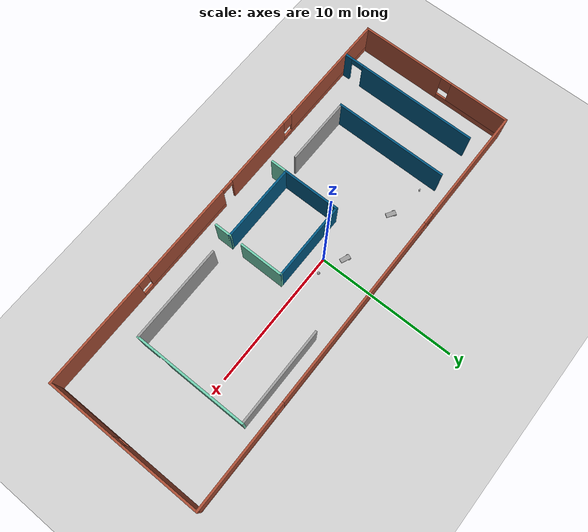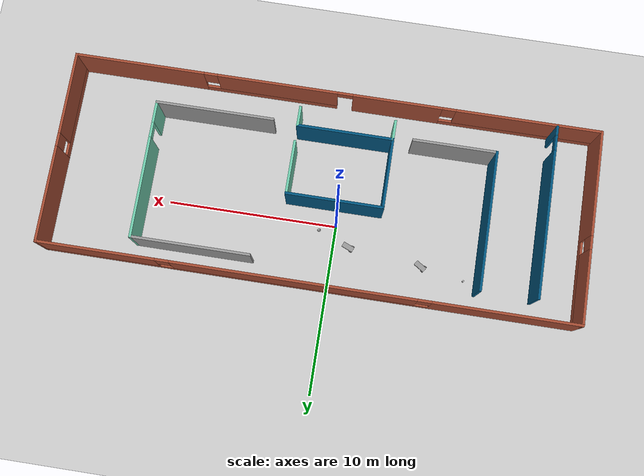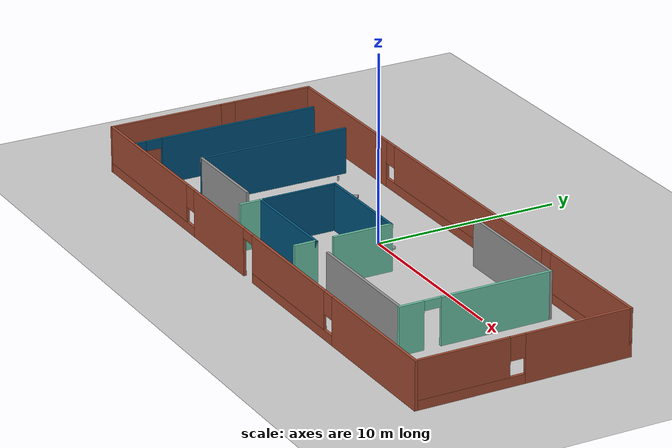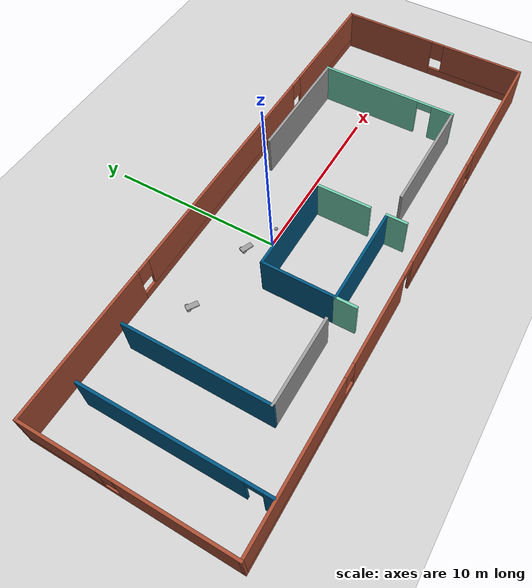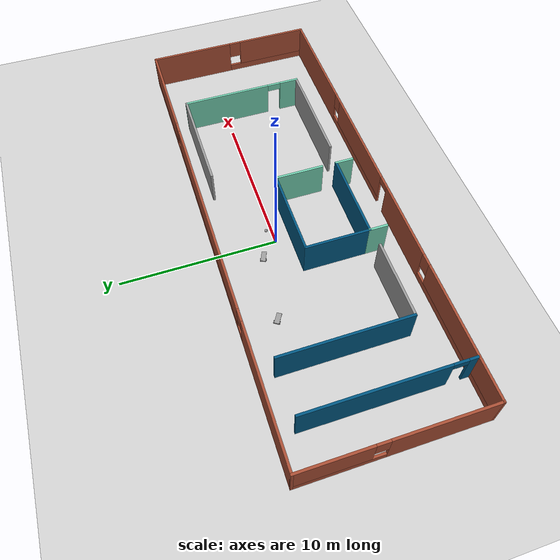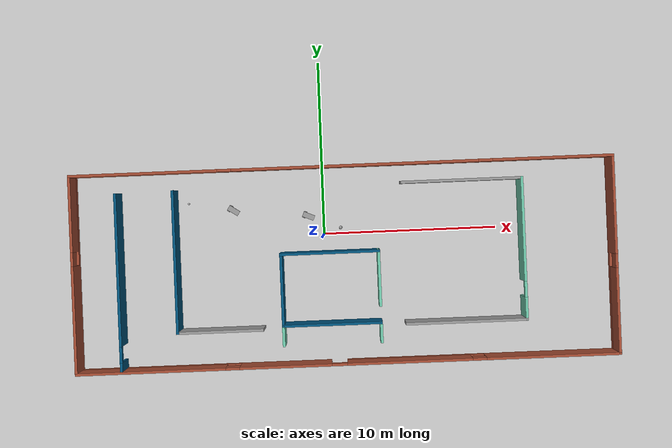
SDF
<sdf version="1.6">
 <world name="default">
  <light name="sun" type="directional">
   <pose>0 0 10 0 -0 0</pose>
   <diffuse>0.8 0.8 0.8 1</diffuse>
   <specular>0.2 0.2 0.2 1</specular>
   <attenuation>
    <range>1000</range>
    <constant>0.9</constant>
    <linear>0.01</linear>
    <quadratic>0.001</quadratic>
   </attenuation>
   <direction>-0.5 0.1 -0.9</direction>
  </light>
  <model name="ground_plane">
   <static>1</static>
   <link name="link">
    <collision name="collision">
     <geometry><plane><normal>0 0 1</normal><size>100 100</size></plane></geometry>
     <surface>
      <contact><collide_bitmask>65535</collide_bitmask></contact>
      <friction><ode><mu>100</mu><mu2>50</mu2></ode></friction>
     </surface>
    </collision>
    <visual name="visual">
     <cast_shadows>0</cast_shadows>
     <geometry><plane><normal>0 0 1</normal><size>100 100</size></plane></geometry>
     <material>
      <script><uri>file://media/materials/scripts/gazebo.material</uri><name>Gazebo/Grey</name></script>
     </material>
    </visual>
   </link>
  </model>
  <gravity>0 0 -9.8</gravity>
  <magnetic_field>6e-06 2.3e-05 -4.2e-05</magnetic_field>
  <atmosphere type="adiabatic"/>
  <physics name="default_physics" default="0" type="ode">
   <max_step_size>0.001</max_step_size>
   <real_time_factor>1</real_time_factor>
   <real_time_update_rate>1000</real_time_update_rate>
  </physics>
  <scene><ambient>0.4 0.4 0.4 1</ambient><background>0.7 0.7 0.7 1</background><shadows>1</shadows></scene>
  <spherical_coordinates>
   <surface_model>EARTH_WGS84</surface_model>
   <latitude_deg>0</latitude_deg>
   <longitude_deg>0</longitude_deg>
   <elevation>0</elevation>
   <heading_deg>0</heading_deg>
  </spherical_coordinates>
  <model name="building">
   <pose>1.10006 -1.77566 0 0 -0 0</pose>
   <link name="Wall_11">
    <pose>0 5.675 0 0 -0 0</pose>
    <visual name="Wall_11_Visual_0">
     <pose>-11.3538 0 1.25 0 -0 0</pose>
     <geometry><box><size>8.54246 0.15 2.5</size></box></geometry>
     <material>
      <script><uri>file://media/materials/scripts/gazebo.material</uri><name>Gazebo/Bricks</name></script>
      <ambient>1 1 1 1</ambient>
     </material>
     <meta><layer>0</layer></meta>
    </visual>
    <collision name="Wall_11_Collision_0">
     <geometry><box><size>8.54246 0.15 2.5</size></box></geometry>
     <pose>-11.3538 0 1.25 0 -0 0</pose>
    </collision>
    <visual name="Wall_11_Visual_1">
     <pose>4.27123 0 0.25 0 -0 0</pose>
     <geometry><box><size>22.7075 0.15 0.5</size></box></geometry>
     <material>
      <script><uri>file://media/materials/scripts/gazebo.material</uri><name>Gazebo/Bricks</name></script>
      <ambient>1 1 1 1</ambient>
     </material>
     <meta><layer>0</layer></meta>
    </visual>
    <collision name="Wall_11_Collision_1">
     <geometry><box><size>22.7075 0.15 0.5</size></box></geometry>
     <pose>4.27123 0 0.25 0 -0 0</pose>
    </collision>
    <visual name="Wall_11_Visual_2">
     <pose>0.803208 0 1.5 0 -0 0</pose>
     <geometry><box><size>14.1715 0.15 2</size></box></geometry>
     <material>
      <script><uri>file://media/materials/scripts/gazebo.material</uri><name>Gazebo/Bricks</name></script>
      <ambient>1 1 1 1</ambient>
     </material>
     <meta><layer>0</layer></meta>
    </visual>
    <collision name="Wall_11_Collision_2">
     <geometry><box><size>14.1715 0.15 2</size></box></geometry>
     <pose>0.803208 0 1.5 0 -0 0</pose>
    </collision>
    <visual name="Wall_11_Visual_3">
     <pose>12.157 0 1.5 0 -0 0</pose>
     <geometry><box><size>6.93605 0.15 2</size></box></geometry>
     <material>
      <script><uri>file://media/materials/scripts/gazebo.material</uri><name>Gazebo/Bricks</name></script>
      <ambient>1 1 1 1</ambient>
     </material>
     <meta><layer>0</layer></meta>
    </visual>
    <collision name="Wall_11_Collision_3">
     <geometry><box><size>6.93605 0.15 2</size></box></geometry>
     <pose>12.157 0 1.5 0 -0 0</pose>
    </collision>
    <visual name="Wall_11_Visual_4">
     <pose>-6.68254 0 1.9 0 -0 0</pose>
     <geometry><box><size>0.8 0.15 1.2</size></box></geometry>
     <material>
      <script><uri>file://media/materials/scripts/gazebo.material</uri><name>Gazebo/Bricks</name></script>
      <ambient>1 1 1 1</ambient>
     </material>
     <meta><layer>0</layer></meta>
    </visual>
    <collision name="Wall_11_Collision_4">
     <geometry><box><size>0.8 0.15 1.2</size></box></geometry>
     <pose>-6.68254 0 1.9 0 -0 0</pose>
    </collision>
    <visual name="Wall_11_Visual_5">
     <pose>8.28895 0 1.9 0 -0 0</pose>
     <geometry><box><size>0.8 0.15 1.2</size></box></geometry>
     <material>
      <script><uri>file://media/materials/scripts/gazebo.material</uri><name>Gazebo/Bricks</name></script>
      <ambient>1 1 1 1</ambient>
     </material>
     <meta><layer>0</layer></meta>
    </visual>
    <collision name="Wall_11_Collision_5">
     <geometry><box><size>0.8 0.15 1.2</size></box></geometry>
     <pose>8.28895 0 1.9 0 -0 0</pose>
    </collision>
   </link>
   <link name="Wall_12">
    <pose>15.55 0 0 0 0 -1.5708</pose>
    <visual name="Wall_12_Visual_0">
     <pose>-2.88672 0 1.25 0 -0 0</pose>
     <geometry><box><size>5.72656 0.15 2.5</size></box></geometry>
     <material>
      <script><uri>file://media/materials/scripts/gazebo.material</uri><name>Gazebo/Bricks</name></script>
      <ambient>1 1 1 1</ambient>
     </material>
     <meta><layer>0</layer></meta>
    </visual>
    <collision name="Wall_12_Collision_0">
     <geometry><box><size>5.72656 0.15 2.5</size></box></geometry>
     <pose>-2.88672 0 1.25 0 -0 0</pose>
    </collision>
    <visual name="Wall_12_Visual_1">
     <pose>2.86328 0 0.25 0 -0 0</pose>
     <geometry><box><size>5.77344 0.15 0.5</size></box></geometry>
     <material>
      <script><uri>file://media/materials/scripts/gazebo.material</uri><name>Gazebo/Bricks</name></script>
      <ambient>1 1 1 1</ambient>
     </material>
     <meta><layer>0</layer></meta>
    </visual>
    <collision name="Wall_12_Collision_1">
     <geometry><box><size>5.77344 0.15 0.5</size></box></geometry>
     <pose>2.86328 0 0.25 0 -0 0</pose>
    </collision>
    <visual name="Wall_12_Visual_2">
     <pose>3.26328 0 1.5 0 -0 0</pose>
     <geometry><box><size>4.97344 0.15 2</size></box></geometry>
     <material>
      <script><uri>file://media/materials/scripts/gazebo.material</uri><name>Gazebo/Bricks</name></script>
      <ambient>1 1 1 1</ambient>
     </material>
     <meta><layer>0</layer></meta>
    </visual>
    <collision name="Wall_12_Collision_2">
     <geometry><box><size>4.97344 0.15 2</size></box></geometry>
     <pose>3.26328 0 1.5 0 -0 0</pose>
    </collision>
    <visual name="Wall_12_Visual_3">
     <pose>0.376562 0 1.9 0 -0 0</pose>
     <geometry><box><size>0.8 0.15 1.2</size></box></geometry>
     <material>
      <script><uri>file://media/materials/scripts/gazebo.material</uri><name>Gazebo/Bricks</name></script>
      <ambient>1 1 1 1</ambient>
     </material>
     <meta><layer>0</layer></meta>
    </visual>
    <collision name="Wall_12_Collision_3">
     <geometry><box><size>0.8 0.15 1.2</size></box></geometry>
     <pose>0.376562 0 1.9 0 -0 0</pose>
    </collision>
   </link>
   <link name="Wall_13">
    <pose>0 -5.675 0 0 -0 3.14159</pose>
    <visual name="Wall_13_Visual_0">
     <pose>-11.7722 0 1.25 0 -0 0</pose>
     <geometry><box><size>7.70561 0.15 2.5</size></box></geometry>
     <material>
      <script><uri>file://media/materials/scripts/gazebo.material</uri><name>Gazebo/Bricks</name></script>
      <ambient>1 1 1 1</ambient>
     </material>
     <meta><layer>0</layer></meta>
    </visual>
    <collision name="Wall_13_Collision_0">
     <geometry><box><size>7.70561 0.15 2.5</size></box></geometry>
     <pose>-11.7722 0 1.25 0 -0 0</pose>
    </collision>
    <visual name="Wall_13_Visual_1">
     <pose>3.57682 0 1.25 0 -0 0</pose>
     <geometry><box><size>5.27152 0.15 2.5</size></box></geometry>
     <material>
      <script><uri>file://media/materials/scripts/gazebo.material</uri><name>Gazebo/Bricks</name></script>
      <ambient>1 1 1 1</ambient>
     </material>
     <meta><layer>0</layer></meta>
    </visual>
    <collision name="Wall_13_Collision_1">
     <geometry><box><size>5.27152 0.15 2.5</size></box></geometry>
     <pose>3.57682 0 1.25 0 -0 0</pose>
    </collision>
    <visual name="Wall_13_Visual_2">
     <pose>-3.93917 0 0.25 0 -0 0</pose>
     <geometry><box><size>7.96045 0.15 0.5</size></box></geometry>
     <material>
      <script><uri>file://media/materials/scripts/gazebo.material</uri><name>Gazebo/Bricks</name></script>
      <ambient>1 1 1 1</ambient>
     </material>
     <meta><layer>0</layer></meta>
    </visual>
    <collision name="Wall_13_Collision_2">
     <geometry><box><size>7.96045 0.15 0.5</size></box></geometry>
     <pose>-3.93917 0 0.25 0 -0 0</pose>
    </collision>
    <visual name="Wall_13_Visual_3">
     <pose>10.9188 0 0.25 0 -0 0</pose>
     <geometry><box><size>9.41242 0.15 0.5</size></box></geometry>
     <material>
      <script><uri>file://media/materials/scripts/gazebo.material</uri><name>Gazebo/Bricks</name></script>
      <ambient>1 1 1 1</ambient>
     </material>
     <meta><layer>0</layer></meta>
    </visual>
    <collision name="Wall_13_Collision_3">
     <geometry><box><size>9.41242 0.15 0.5</size></box></geometry>
     <pose>10.9188 0 0.25 0 -0 0</pose>
    </collision>
    <visual name="Wall_13_Visual_4">
     <pose>-3.53917 0 1.5 0 -0 0</pose>
     <geometry><box><size>7.16045 0.15 2</size></box></geometry>
     <material>
      <script><uri>file://media/materials/scripts/gazebo.material</uri><name>Gazebo/Bricks</name></script>
      <ambient>1 1 1 1</ambient>
     </material>
     <meta><layer>0</layer></meta>
    </visual>
    <collision name="Wall_13_Collision_4">
     <geometry><box><size>7.16045 0.15 2</size></box></geometry>
     <pose>-3.53917 0 1.5 0 -0 0</pose>
    </collision>
    <visual name="Wall_13_Visual_5">
     <pose>-3.53917 0 1.5 0 -0 0</pose>
     <geometry><box><size>7.16045 0.15 2</size></box></geometry>
     <material>
      <script><uri>file://media/materials/scripts/gazebo.material</uri><name>Gazebo/Bricks</name></script>
      <ambient>1 1 1 1</ambient>
     </material>
     <meta><layer>0</layer></meta>
    </visual>
    <collision name="Wall_13_Collision_5">
     <geometry><box><size>7.16045 0.15 2</size></box></geometry>
     <pose>-3.53917 0 1.5 0 -0 0</pose>
    </collision>
    <visual name="Wall_13_Visual_6">
     <pose>11.3188 0 1.5 0 -0 0</pose>
     <geometry><box><size>8.61242 0.15 2</size></box></geometry>
     <material>
      <script><uri>file://media/materials/scripts/gazebo.material</uri><name>Gazebo/Bricks</name></script>
      <ambient>1 1 1 1</ambient>
     </material>
     <meta><layer>0</layer></meta>
    </visual>
    <collision name="Wall_13_Collision_6">
     <geometry><box><size>8.61242 0.15 2</size></box></geometry>
     <pose>11.3188 0 1.5 0 -0 0</pose>
    </collision>
    <visual name="Wall_13_Visual_7">
     <pose>-7.51939 0 1.9 0 -0 0</pose>
     <geometry><box><size>0.8 0.15 1.2</size></box></geometry>
     <material>
      <script><uri>file://media/materials/scripts/gazebo.material</uri><name>Gazebo/Bricks</name></script>
      <ambient>1 1 1 1</ambient>
     </material>
     <meta><layer>0</layer></meta>
    </visual>
    <collision name="Wall_13_Collision_7">
     <geometry><box><size>0.8 0.15 1.2</size></box></geometry>
     <pose>-7.51939 0 1.9 0 -0 0</pose>
    </collision>
    <visual name="Wall_13_Visual_8">
     <pose>6.61258 0 1.9 0 -0 0</pose>
     <geometry><box><size>0.8 0.15 1.2</size></box></geometry>
     <material>
      <script><uri>file://media/materials/scripts/gazebo.material</uri><name>Gazebo/Bricks</name></script>
      <ambient>1 1 1 1</ambient>
     </material>
     <meta><layer>0</layer></meta>
    </visual>
    <collision name="Wall_13_Collision_8">
     <geometry><box><size>0.8 0.15 1.2</size></box></geometry>
     <pose>6.61258 0 1.9 0 -0 0</pose>
    </collision>
    <visual name="Wall_13_Visual_9">
     <pose>0.491056 0 2.25 0 -0 0</pose>
     <geometry><box><size>0.9 0.15 0.5</size></box></geometry>
     <material>
      <script><uri>file://media/materials/scripts/gazebo.material</uri><name>Gazebo/Bricks</name></script>
      <ambient>1 1 1 1</ambient>
     </material>
     <meta><layer>0</layer></meta>
    </visual>
    <collision name="Wall_13_Collision_9">
     <geometry><box><size>0.9 0.15 0.5</size></box></geometry>
     <pose>0.491056 0 2.25 0 -0 0</pose>
    </collision>
    <visual name="Wall_13_Visual_10">
     <pose>0.491056 0 2.25 0 -0 0</pose>
     <geometry><box><size>0.9 0.15 0.5</size></box></geometry>
     <material>
      <script><uri>file://media/materials/scripts/gazebo.material</uri><name>Gazebo/Bricks</name></script>
      <ambient>1 1 1 1</ambient>
     </material>
     <meta><layer>0</layer></meta>
    </visual>
    <collision name="Wall_13_Collision_10">
     <geometry><box><size>0.9 0.15 0.5</size></box></geometry>
     <pose>0.491056 0 2.25 0 -0 0</pose>
    </collision>
   </link>
   <link name="Wall_14">
    <pose>-15.55 0 0 0 -0 1.5708</pose>
    <visual name="Wall_14_Visual_0">
     <pose>-2.61615 0 1.25 0 -0 0</pose>
     <geometry><box><size>6.2677 0.15 2.5</size></box></geometry>
     <material>
      <script><uri>file://media/materials/scripts/gazebo.material</uri><name>Gazebo/Bricks</name></script>
      <ambient>1 1 1 1</ambient>
     </material>
     <meta><layer>0</layer></meta>
    </visual>
    <collision name="Wall_14_Collision_0">
     <geometry><box><size>6.2677 0.15 2.5</size></box></geometry>
     <pose>-2.61615 0 1.25 0 -0 0</pose>
    </collision>
    <visual name="Wall_14_Visual_1">
     <pose>3.13385 0 0.25 0 -0 0</pose>
     <geometry><box><size>5.2323 0.15 0.5</size></box></geometry>
     <material>
      <script><uri>file://media/materials/scripts/gazebo.material</uri><name>Gazebo/Bricks</name></script>
      <ambient>1 1 1 1</ambient>
     </material>
     <meta><layer>0</layer></meta>
    </visual>
    <collision name="Wall_14_Collision_1">
     <geometry><box><size>5.2323 0.15 0.5</size></box></geometry>
     <pose>3.13385 0 0.25 0 -0 0</pose>
    </collision>
    <visual name="Wall_14_Visual_2">
     <pose>3.53385 0 1.5 0 -0 0</pose>
     <geometry><box><size>4.4323 0.15 2</size></box></geometry>
     <material>
      <script><uri>file://media/materials/scripts/gazebo.material</uri><name>Gazebo/Bricks</name></script>
      <ambient>1 1 1 1</ambient>
     </material>
     <meta><layer>0</layer></meta>
    </visual>
    <collision name="Wall_14_Collision_2">
     <geometry><box><size>4.4323 0.15 2</size></box></geometry>
     <pose>3.53385 0 1.5 0 -0 0</pose>
    </collision>
    <visual name="Wall_14_Visual_3">
     <pose>0.917703 0 1.9 0 -0 0</pose>
     <geometry><box><size>0.8 0.15 1.2</size></box></geometry>
     <material>
      <script><uri>file://media/materials/scripts/gazebo.material</uri><name>Gazebo/Bricks</name></script>
      <ambient>1 1 1 1</ambient>
     </material>
     <meta><layer>0</layer></meta>
    </visual>
    <collision name="Wall_14_Collision_3">
     <geometry><box><size>0.8 0.15 1.2</size></box></geometry>
     <pose>0.917703 0 1.9 0 -0 0</pose>
    </collision>
   </link>
   <link name="Wall_16">
    <pose>-12.9615 -0.529344 0 0 0 -1.5708</pose>
    <visual name="Wall_16_Visual_0">
     <pose>-0.738849 0 1.25 0 -0 0</pose>
     <geometry><box><size>8.7723 0.15 2.5</size></box></geometry>
     <material>
      <script><uri>file://media/materials/scripts/gazebo.material</uri><name>Gazebo/Grey</name></script>
      <ambient>0 0.333333 0.498039 1</ambient>
     </material>
     <meta><layer>0</layer></meta>
    </visual>
    <collision name="Wall_16_Collision_0">
     <geometry><box><size>8.7723 0.15 2.5</size></box></geometry>
     <pose>-0.738849 0 1.25 0 -0 0</pose>
    </collision>
    <visual name="Wall_16_Visual_1">
     <pose>4.83615 0 1.25 0 -0 0</pose>
     <geometry><box><size>0.577698 0.15 2.5</size></box></geometry>
     <material>
      <script><uri>file://media/materials/scripts/gazebo.material</uri><name>Gazebo/Grey</name></script>
      <ambient>0 0.333333 0.498039 1</ambient>
     </material>
     <meta><layer>0</layer></meta>
    </visual>
    <collision name="Wall_16_Collision_1">
     <geometry><box><size>0.577698 0.15 2.5</size></box></geometry>
     <pose>4.83615 0 1.25 0 -0 0</pose>
    </collision>
    <visual name="Wall_16_Visual_2">
     <pose>4.0973 0 2.25 0 -0 0</pose>
     <geometry><box><size>0.9 0.15 0.5</size></box></geometry>
     <material>
      <script><uri>file://media/materials/scripts/gazebo.material</uri><name>Gazebo/Grey</name></script>
      <ambient>0 0.333333 0.498039 1</ambient>
     </material>
     <meta><layer>0</layer></meta>
    </visual>
    <collision name="Wall_16_Collision_2">
     <geometry><box><size>0.9 0.15 0.5</size></box></geometry>
     <pose>4.0973 0 2.25 0 -0 0</pose>
    </collision>
   </link>
   <link name="Wall_18">
    <collision name="Wall_18_Collision">
     <geometry><box><size>1.25 0.15 2.5</size></box></geometry>
     <pose>0 0 1.25 0 -0 0</pose>
    </collision>
    <visual name="Wall_18_Visual">
     <pose>0 0 1.25 0 -0 0</pose>
     <geometry><box><size>1.25 0.15 2.5</size></box></geometry>
     <material>
      <script><uri>file://media/materials/scripts/gazebo.material</uri><name>Gazebo/Grey</name></script>
      <ambient>0.435294 0.796078 0.67451 1</ambient>
     </material>
     <meta><layer>0</layer></meta>
    </visual>
    <pose>-3.62178 -3.91924 0 0 -0 1.5708</pose>
   </link>
   <link name="Wall_19">
    <collision name="Wall_19_Collision">
     <geometry><box><size>5.75 0.15 2.5</size></box></geometry>
     <pose>0 0 1.25 0 -0 0</pose>
    </collision>
    <visual name="Wall_19_Visual">
     <pose>0 0 1.25 0 -0 0</pose>
     <geometry><box><size>5.75 0.15 2.5</size></box></geometry>
     <material>
      <script><uri>file://media/materials/scripts/gazebo.material</uri><name>Gazebo/Grey</name></script>
      <ambient>0 0.333333 0.498039 1</ambient>
     </material>
     <meta><layer>0</layer></meta>
    </visual>
    <pose>-0.821778 -3.36924 0 0 -0 0</pose>
   </link>
   <link name="Wall_20">
    <collision name="Wall_20_Collision">
     <geometry><box><size>1.25 0.15 2.5</size></box></geometry>
     <pose>0 0 1.25 0 -0 0</pose>
    </collision>
    <visual name="Wall_20_Visual">
     <pose>0 0 1.25 0 -0 0</pose>
     <geometry><box><size>1.25 0.15 2.5</size></box></geometry>
     <material>
      <script><uri>file://media/materials/scripts/gazebo.material</uri><name>Gazebo/Grey</name></script>
      <ambient>0.435294 0.796078 0.67451 1</ambient>
     </material>
     <meta><layer>0</layer></meta>
    </visual>
    <pose>1.97822 -3.91924 0 0 0 -1.5708</pose>
   </link>
   <link name="Wall_22">
    <collision name="Wall_22_Collision">
     <geometry><box><size>8.25 0.15 2.5</size></box></geometry>
     <pose>0 0 1.25 0 -0 0</pose>
    </collision>
    <visual name="Wall_22_Visual">
     <pose>0 0 1.25 0 -0 0</pose>
     <geometry><box><size>8.25 0.15 2.5</size></box></geometry>
     <material>
      <script><uri>file://media/materials/scripts/gazebo.material</uri><name>Gazebo/Grey</name></script>
      <ambient>0 0.333333 0.498039 1</ambient>
     </material>
     <meta><layer>0</layer></meta>
    </visual>
    <pose>-9.67334 0.523126 0 0 0 -1.5708</pose>
   </link>
   <link name="Wall_23">
    <collision name="Wall_23_Collision">
     <geometry><box><size>5 0.15 2.5</size></box></geometry>
     <pose>0 0 1.25 0 -0 0</pose>
    </collision>
    <visual name="Wall_23_Visual">
     <pose>0 0 1.25 0 -0 0</pose>
     <geometry><box><size>5 0.15 2.5</size></box></geometry>
     <material>
      <script><uri>file://media/materials/scripts/gazebo.material</uri><name>Gazebo/Grey</name></script>
      <ambient>0 0 0 1</ambient>
     </material>
     <meta><layer>0</layer></meta>
    </visual>
    <pose>-7.24834 -3.52687 0 0 -0 0</pose>
   </link>
   <link name="Wall_26">
    <collision name="Wall_26_Collision">
     <geometry><box><size>7 0.15 2.5</size></box></geometry>
     <pose>0 0 1.25 0 -0 0</pose>
    </collision>
    <visual name="Wall_26_Visual">
     <pose>0 0 1.25 0 -0 0</pose>
     <geometry><box><size>7 0.15 2.5</size></box></geometry>
     <material>
      <script><uri>file://media/materials/scripts/gazebo.material</uri><name>Gazebo/Grey</name></script>
      <ambient>0 0 0 1</ambient>
     </material>
     <meta><layer>0</layer></meta>
    </visual>
    <pose>6.8867 -3.50728 0 0 -0 0</pose>
   </link>
   <link name="Wall_27">
    <pose>10.3117 0.542717 0 0 -0 1.5708</pose>
    <visual name="Wall_27_Visual_0">
     <pose>-3.45549 0 1.25 0 -0 0</pose>
     <geometry><box><size>1.33903 0.15 2.5</size></box></geometry>
     <material>
      <script><uri>file://media/materials/scripts/gazebo.material</uri><name>Gazebo/Grey</name></script>
      <ambient>0.435294 0.796078 0.67451 1</ambient>
     </material>
     <meta><layer>0</layer></meta>
    </visual>
    <collision name="Wall_27_Collision_0">
     <geometry><box><size>1.33903 0.15 2.5</size></box></geometry>
     <pose>-3.45549 0 1.25 0 -0 0</pose>
    </collision>
    <visual name="Wall_27_Visual_1">
     <pose>1.11951 0 1.25 0 -0 0</pose>
     <geometry><box><size>6.01097 0.15 2.5</size></box></geometry>
     <material>
      <script><uri>file://media/materials/scripts/gazebo.material</uri><name>Gazebo/Grey</name></script>
      <ambient>0.435294 0.796078 0.67451 1</ambient>
     </material>
     <meta><layer>0</layer></meta>
    </visual>
    <collision name="Wall_27_Collision_1">
     <geometry><box><size>6.01097 0.15 2.5</size></box></geometry>
     <pose>1.11951 0 1.25 0 -0 0</pose>
    </collision>
    <visual name="Wall_27_Visual_2">
     <pose>-2.33597 0 2.25 0 -0 0</pose>
     <geometry><box><size>0.9 0.15 0.5</size></box></geometry>
     <material>
      <script><uri>file://media/materials/scripts/gazebo.material</uri><name>Gazebo/Grey</name></script>
      <ambient>0.435294 0.796078 0.67451 1</ambient>
     </material>
     <meta><layer>0</layer></meta>
    </visual>
    <collision name="Wall_27_Collision_2">
     <geometry><box><size>0.9 0.15 0.5</size></box></geometry>
     <pose>-2.33597 0 2.25 0 -0 0</pose>
    </collision>
   </link>
   <link name="Wall_29">
    <collision name="Wall_29_Collision">
     <geometry><box><size>4.25 0.15 2.5</size></box></geometry>
     <pose>0 0 1.25 0 -0 0</pose>
    </collision>
    <visual name="Wall_29_Visual">
     <pose>0 0 1.25 0 -0 0</pose>
     <geometry><box><size>4.25 0.15 2.5</size></box></geometry>
     <material>
      <script><uri>file://media/materials/scripts/gazebo.material</uri><name>Gazebo/Grey</name></script>
      <ambient>0 0.333333 0.498039 1</ambient>
     </material>
     <meta><layer>0</layer></meta>
    </visual>
    <pose>-3.62178 -1.31924 0 0 -0 1.5708</pose>
   </link>
   <link name="Wall_30">
    <collision name="Wall_30_Collision">
     <geometry><box><size>5.75 0.15 2.5</size></box></geometry>
     <pose>0 0 1.25 0 -0 0</pose>
    </collision>
    <visual name="Wall_30_Visual">
     <pose>0 0 1.25 0 -0 0</pose>
     <geometry><box><size>5.75 0.15 2.5</size></box></geometry>
     <material>
      <script><uri>file://media/materials/scripts/gazebo.material</uri><name>Gazebo/Grey</name></script>
      <ambient>0 0.333333 0.498039 1</ambient>
     </material>
     <meta><layer>0</layer></meta>
    </visual>
    <pose>-0.821778 0.730764 0 0 -0 0</pose>
   </link>
   <link name="Wall_31">
    <collision name="Wall_31_Collision">
     <geometry><box><size>3.25 0.15 2.5</size></box></geometry>
     <pose>0 0 1.25 0 -0 0</pose>
    </collision>
    <visual name="Wall_31_Visual">
     <pose>0 0 1.25 0 -0 0</pose>
     <geometry><box><size>3.25 0.15 2.5</size></box></geometry>
     <material>
      <script><uri>file://media/materials/scripts/gazebo.material</uri><name>Gazebo/Grey</name></script>
      <ambient>0.435294 0.796078 0.67451 1</ambient>
     </material>
     <meta><layer>0</layer></meta>
    </visual>
    <pose>1.97822 -0.819236 0 0 0 -1.5708</pose>
   </link>
   <link name="Wall_33">
    <collision name="Wall_33_Collision">
     <geometry><box><size>7 0.15 2.5</size></box></geometry>
     <pose>0 0 1.25 0 -0 0</pose>
    </collision>
    <visual name="Wall_33_Visual">
     <pose>0 0 1.25 0 -0 0</pose>
     <geometry><box><size>7 0.15 2.5</size></box></geometry>
     <material>
      <script><uri>file://media/materials/scripts/gazebo.material</uri><name>Gazebo/Grey</name></script>
      <ambient>0 0 0 1</ambient>
     </material>
     <meta><layer>0</layer></meta>
    </visual>
    <pose>6.8867 4.59272 0 0 -0 3.14159</pose>
   </link>
   <static>1</static>
  </model>
  <model name="robot">
   <link name="link_0">
    <pose>0.052352 0.001088 -0.006663 0 -0 0</pose>
    <inertial>
     <mass>0.0208388</mass>
     <inertia>
      <ixx>0.00018135</ixx>
      <ixy>0</ixy>
      <ixz>0</ixz>
      <iyy>0.00085991</iyy>
      <iyz>0</iyz>
      <izz>0.00100859</izz>
     </inertia>
    </inertial>
    <visual name="visual">
     <geometry><box><size>0.696972 0.308261 0.096977</size></box></geometry>
     <material>
      <lighting>1</lighting>
      <script><uri>file://media/materials/scripts/gazebo.material</uri><name>Gazebo/Grey</name></script>
      <shader type="pixel"><normal_map>__default__</normal_map></shader>
      <ambient>0.3 0.3 0.3 1</ambient>
      <diffuse>0.7 0.7 0.7 1</diffuse>
      <specular>0.01 0.01 0.01 1</specular>
      <emissive>0 0 0 1</emissive>
     </material>
    </visual>
    <collision name="collision">
     <geometry><box><size>0.696972 0.308261 0.096977</size></box></geometry>
     <surface>
      <friction>
       <ode><mu>1</mu><mu2>1</mu2><fdir1>0 0 0</fdir1><slip1>0</slip1><slip2>0</slip2></ode>
       <torsional>
        <coefficient>1</coefficient>
        <patch_radius>0</patch_radius>
        <surface_radius>0</surface_radius>
        <use_patch_radius>1</use_patch_radius>
        <ode><slip>0</slip></ode>
       </torsional>
      </friction>
      <bounce><restitution_coefficient>0</restitution_coefficient><threshold>1e+06</threshold></bounce>
      <contact>
       <collide_without_contact>0</collide_without_contact>
       <collide_without_contact_bitmask>1</collide_without_contact_bitmask>
       <collide_bitmask>1</collide_bitmask>
       <ode>
        <soft_cfm>0</soft_cfm>
        <soft_erp>0.2</soft_erp>
        <kp>1e+13</kp>
        <kd>1</kd>
        <max_vel>0.01</max_vel>
        <min_depth>0</min_depth>
       </ode>
       <bullet>
        <split_impulse>1</split_impulse>
        <split_impulse_penetration_threshold>-0.01</split_impulse_penetration_threshold>
        <soft_cfm>0</soft_cfm>
        <soft_erp>0.2</soft_erp>
        <kp>1e+13</kp>
        <kd>1</kd>
       </bullet>
      </contact>
     </surface>
    </collision>
   </link>
   <link name="link_1">
    <pose>-0.195425 0.1734 -0.018735 1.5707 -0 0</pose>
    <inertial>
     <mass>0.00146225</mass>
     <inertia>
      <ixx>3.88507e-06</ixx>
      <ixy>0</ixy>
      <ixz>0</ixz>
      <iyy>3.88507e-06</iyy>
      <iyz>0</iyz>
      <izz>7.45718e-06</izz>
     </inertia>
    </inertial>
    <visual name="visual">
     <geometry><cylinder><radius>0.100993</radius><length>0.0358352</length></cylinder></geometry>
     <material>
      <lighting>1</lighting>
      <script><uri>file://media/materials/scripts/gazebo.material</uri><name>Gazebo/Grey</name></script>
      <shader type="pixel"><normal_map>__default__</normal_map></shader>
      <ambient>0.3 0.3 0.3 1</ambient>
      <diffuse>0.7 0.7 0.7 1</diffuse>
      <specular>0.01 0.01 0.01 1</specular>
      <emissive>0 0 0 1</emissive>
     </material>
    </visual>
    <collision name="collision">
     <geometry><cylinder><radius>0.100993</radius><length>0.035835</length></cylinder></geometry>
     <surface>
      <friction>
       <ode><mu>1</mu><mu2>1</mu2><fdir1>0 0 0</fdir1><slip1>0</slip1><slip2>0</slip2></ode>
       <torsional>
        <coefficient>1</coefficient>
        <patch_radius>0</patch_radius>
        <surface_radius>0</surface_radius>
        <use_patch_radius>1</use_patch_radius>
        <ode><slip>0</slip></ode>
       </torsional>
      </friction>
      <bounce><restitution_coefficient>0</restitution_coefficient><threshold>1e+06</threshold></bounce>
      <contact>
       <collide_without_contact>0</collide_without_contact>
       <collide_without_contact_bitmask>1</collide_without_contact_bitmask>
       <collide_bitmask>1</collide_bitmask>
       <ode>
        <soft_cfm>0</soft_cfm>
        <soft_erp>0.2</soft_erp>
        <kp>1e+13</kp>
        <kd>1</kd>
        <max_vel>0.01</max_vel>
        <min_depth>0</min_depth>
       </ode>
       <bullet>
        <split_impulse>1</split_impulse>
        <split_impulse_penetration_threshold>-0.01</split_impulse_penetration_threshold>
        <soft_cfm>0</soft_cfm>
        <soft_erp>0.2</soft_erp>
        <kp>1e+13</kp>
        <kd>1</kd>
       </bullet>
      </contact>
     </surface>
    </collision>
   </link>
   <link name="link_1_clone">
    <pose>-0.181778 -0.173254 -0.02402 1.5707 -0 0</pose>
    <inertial>
     <mass>0.00146225</mass>
     <inertia>
      <ixx>3.88507e-06</ixx>
      <ixy>0</ixy>
      <ixz>0</ixz>
      <iyy>3.88507e-06</iyy>
      <iyz>0</iyz>
      <izz>7.45718e-06</izz>
     </inertia>
    </inertial>
    <visual name="visual">
     <geometry><cylinder><radius>0.100993</radius><length>0.0358352</length></cylinder></geometry>
     <material>
      <lighting>1</lighting>
      <script><uri>file://media/materials/scripts/gazebo.material</uri><name>Gazebo/Grey</name></script>
      <shader type="pixel"><normal_map>__default__</normal_map></shader>
      <ambient>0.3 0.3 0.3 1</ambient>
      <diffuse>0.7 0.7 0.7 1</diffuse>
      <specular>0.01 0.01 0.01 1</specular>
      <emissive>0 0 0 1</emissive>
     </material>
    </visual>
    <collision name="collision">
     <geometry><cylinder><radius>0.100993</radius><length>0.035835</length></cylinder></geometry>
     <surface>
      <friction>
       <ode><mu>1</mu><mu2>1</mu2><fdir1>0 0 0</fdir1><slip1>0</slip1><slip2>0</slip2></ode>
       <torsional>
        <coefficient>1</coefficient>
        <patch_radius>0</patch_radius>
        <surface_radius>0</surface_radius>
        <use_patch_radius>1</use_patch_radius>
        <ode><slip>0</slip></ode>
       </torsional>
      </friction>
      <bounce><restitution_coefficient>0</restitution_coefficient><threshold>1e+06</threshold></bounce>
      <contact>
       <collide_without_contact>0</collide_without_contact>
       <collide_without_contact_bitmask>1</collide_without_contact_bitmask>
       <collide_bitmask>1</collide_bitmask>
       <ode>
        <soft_cfm>0</soft_cfm>
        <soft_erp>0.2</soft_erp>
        <kp>1e+13</kp>
        <kd>1</kd>
        <max_vel>0.01</max_vel>
        <min_depth>0</min_depth>
       </ode>
       <bullet>
        <split_impulse>1</split_impulse>
        <split_impulse_penetration_threshold>-0.01</split_impulse_penetration_threshold>
        <soft_cfm>0</soft_cfm>
        <soft_erp>0.2</soft_erp>
        <kp>1e+13</kp>
        <kd>1</kd>
       </bullet>
      </contact>
     </surface>
    </collision>
   </link>
   <link name="link_2">
    <pose>0.323357 -0.001234 -0.082334 0 -0 0</pose>
    <inertial>
     <mass>0.00040469</mass>
     <inertia>
      <ixx>2.21335e-07</ixx>
      <ixy>0</ixy>
      <ixz>0</ixz>
      <iyy>2.21335e-07</iyy>
      <iyz>0</iyz>
      <izz>2.21335e-07</izz>
     </inertia>
    </inertial>
    <visual name="visual">
     <geometry><sphere><radius>0.0369774</radius></sphere></geometry>
     <material>
      <lighting>1</lighting>
      <script><uri>file://media/materials/scripts/gazebo.material</uri><name>Gazebo/Grey</name></script>
      <shader type="pixel"/>
      <ambient>0.3 0.3 0.3 1</ambient>
      <diffuse>0.7 0.7 0.7 1</diffuse>
      <specular>0.01 0.01 0.01 1</specular>
      <emissive>0 0 0 1</emissive>
     </material>
    </visual>
    <collision name="collision">
     <geometry><sphere><radius>0.036977</radius></sphere></geometry>
     <surface>
      <friction>
       <ode><mu>1</mu><mu2>1</mu2><fdir1>0 0 0</fdir1><slip1>0</slip1><slip2>0</slip2></ode>
       <torsional>
        <coefficient>1</coefficient>
        <patch_radius>0</patch_radius>
        <surface_radius>0</surface_radius>
        <use_patch_radius>1</use_patch_radius>
        <ode><slip>0</slip></ode>
       </torsional>
      </friction>
      <bounce><restitution_coefficient>0</restitution_coefficient><threshold>1e+06</threshold></bounce>
      <contact>
       <collide_without_contact>0</collide_without_contact>
       <collide_without_contact_bitmask>1</collide_without_contact_bitmask>
       <collide_bitmask>1</collide_bitmask>
       <ode>
        <soft_cfm>0</soft_cfm>
        <soft_erp>0.2</soft_erp>
        <kp>1e+13</kp>
        <kd>1</kd>
        <max_vel>0.01</max_vel>
        <min_depth>0</min_depth>
       </ode>
       <bullet>
        <split_impulse>1</split_impulse>
        <split_impulse_penetration_threshold>-0.01</split_impulse_penetration_threshold>
        <soft_cfm>0</soft_cfm>
        <soft_erp>0.2</soft_erp>
        <kp>1e+13</kp>
        <kd>1</kd>
       </bullet>
      </contact>
     </surface>
    </collision>
   </link>
   <joint name="link_0_JOINT_0" type="revolute">
    <parent>link_0</parent>
    <child>link_1</child>
    <axis>
     <xyz>0 0 1</xyz>
     <use_parent_model_frame>0</use_parent_model_frame>
     <limit>
      <lower>-1.79769e+308</lower>
      <upper>1.79769e+308</upper>
      <effort>-1</effort>
      <velocity>-1</velocity>
     </limit>
     <dynamics>
      <spring_reference>0</spring_reference>
      <spring_stiffness>0</spring_stiffness>
      <damping>0</damping>
      <friction>0</friction>
     </dynamics>
    </axis>
    <physics>
     <ode><limit><cfm>0</cfm><erp>0.2</erp></limit><suspension><cfm>0</cfm><erp>0.2</erp></suspension></ode>
    </physics>
   </joint>
   <joint name="link_0_JOINT_2" type="revolute">
    <parent>link_0</parent>
    <child>link_1_clone</child>
    <axis>
     <xyz>0 0 1</xyz>
     <use_parent_model_frame>0</use_parent_model_frame>
     <limit>
      <lower>-1.79769e+308</lower>
      <upper>1.79769e+308</upper>
      <effort>-1</effort>
      <velocity>-1</velocity>
     </limit>
     <dynamics>
      <spring_reference>0</spring_reference>
      <spring_stiffness>0</spring_stiffness>
      <damping>0</damping>
      <friction>0</friction>
     </dynamics>
    </axis>
    <physics>
     <ode><limit><cfm>0</cfm><erp>0.2</erp></limit><suspension><cfm>0</cfm><erp>0.2</erp></suspension></ode>
    </physics>
   </joint>
   <joint name="link_0_JOINT_3" type="ball">
    <parent>link_0</parent>
    <child>link_2</child>
    <physics>
     <ode><limit><cfm>0</cfm><erp>0.2</erp></limit><suspension><cfm>0</cfm><erp>0.2</erp></suspension></ode>
    </physics>
   </joint>
   <static>0</static>
   <pose>-5.31432 1.59709 0.121397 -0.015503 0.00657 -0.572915</pose>
  </model>
  <model name="robot_clone">
   <link name="link_0">
    <pose>0.052352 0.001088 -0.006663 0 -0 0</pose>
    <inertial>
     <mass>0.0208388</mass>
     <inertia>
      <ixx>0.00018135</ixx>
      <ixy>0</ixy>
      <ixz>0</ixz>
      <iyy>0.00085991</iyy>
      <iyz>0</iyz>
      <izz>0.00100859</izz>
     </inertia>
    </inertial>
    <visual name="visual">
     <geometry><box><size>0.696972 0.308261 0.096977</size></box></geometry>
     <material>
      <lighting>1</lighting>
      <script><uri>file://media/materials/scripts/gazebo.material</uri><name>Gazebo/Grey</name></script>
      <shader type="pixel"><normal_map>__default__</normal_map></shader>
      <ambient>0.3 0.3 0.3 1</ambient>
      <diffuse>0.7 0.7 0.7 1</diffuse>
      <specular>0.01 0.01 0.01 1</specular>
      <emissive>0 0 0 1</emissive>
     </material>
    </visual>
    <collision name="collision">
     <geometry><box><size>0.696972 0.308261 0.096977</size></box></geometry>
     <surface>
      <friction>
       <ode><mu>1</mu><mu2>1</mu2><fdir1>0 0 0</fdir1><slip1>0</slip1><slip2>0</slip2></ode>
       <torsional>
        <coefficient>1</coefficient>
        <patch_radius>0</patch_radius>
        <surface_radius>0</surface_radius>
        <use_patch_radius>1</use_patch_radius>
        <ode><slip>0</slip></ode>
       </torsional>
      </friction>
      <bounce><restitution_coefficient>0</restitution_coefficient><threshold>1e+06</threshold></bounce>
      <contact>
       <collide_without_contact>0</collide_without_contact>
       <collide_without_contact_bitmask>1</collide_without_contact_bitmask>
       <collide_bitmask>1</collide_bitmask>
       <ode>
        <soft_cfm>0</soft_cfm>
        <soft_erp>0.2</soft_erp>
        <kp>1e+13</kp>
        <kd>1</kd>
        <max_vel>0.01</max_vel>
        <min_depth>0</min_depth>
       </ode>
       <bullet>
        <split_impulse>1</split_impulse>
        <split_impulse_penetration_threshold>-0.01</split_impulse_penetration_threshold>
        <soft_cfm>0</soft_cfm>
        <soft_erp>0.2</soft_erp>
        <kp>1e+13</kp>
        <kd>1</kd>
       </bullet>
      </contact>
     </surface>
    </collision>
   </link>
   <link name="link_1">
    <pose>-0.195425 0.1734 -0.018735 1.5707 -0 0</pose>
    <inertial>
     <mass>0.00146225</mass>
     <inertia>
      <ixx>3.88507e-06</ixx>
      <ixy>0</ixy>
      <ixz>0</ixz>
      <iyy>3.88507e-06</iyy>
      <iyz>0</iyz>
      <izz>7.45718e-06</izz>
     </inertia>
    </inertial>
    <visual name="visual">
     <geometry><cylinder><radius>0.100993</radius><length>0.0358352</length></cylinder></geometry>
     <material>
      <lighting>1</lighting>
      <script><uri>file://media/materials/scripts/gazebo.material</uri><name>Gazebo/Grey</name></script>
      <shader type="pixel"><normal_map>__default__</normal_map></shader>
      <ambient>0.3 0.3 0.3 1</ambient>
      <diffuse>0.7 0.7 0.7 1</diffuse>
      <specular>0.01 0.01 0.01 1</specular>
      <emissive>0 0 0 1</emissive>
     </material>
    </visual>
    <collision name="collision">
     <geometry><cylinder><radius>0.100993</radius><length>0.035835</length></cylinder></geometry>
     <surface>
      <friction>
       <ode><mu>1</mu><mu2>1</mu2><fdir1>0 0 0</fdir1><slip1>0</slip1><slip2>0</slip2></ode>
       <torsional>
        <coefficient>1</coefficient>
        <patch_radius>0</patch_radius>
        <surface_radius>0</surface_radius>
        <use_patch_radius>1</use_patch_radius>
        <ode><slip>0</slip></ode>
       </torsional>
      </friction>
      <bounce><restitution_coefficient>0</restitution_coefficient><threshold>1e+06</threshold></bounce>
      <contact>
       <collide_without_contact>0</collide_without_contact>
       <collide_without_contact_bitmask>1</collide_without_contact_bitmask>
       <collide_bitmask>1</collide_bitmask>
       <ode>
        <soft_cfm>0</soft_cfm>
        <soft_erp>0.2</soft_erp>
        <kp>1e+13</kp>
        <kd>1</kd>
        <max_vel>0.01</max_vel>
        <min_depth>0</min_depth>
       </ode>
       <bullet>
        <split_impulse>1</split_impulse>
        <split_impulse_penetration_threshold>-0.01</split_impulse_penetration_threshold>
        <soft_cfm>0</soft_cfm>
        <soft_erp>0.2</soft_erp>
        <kp>1e+13</kp>
        <kd>1</kd>
       </bullet>
      </contact>
     </surface>
    </collision>
   </link>
   <link name="link_1_clone">
    <pose>-0.181778 -0.173254 -0.02402 1.5707 -0 0</pose>
    <inertial>
     <mass>0.00146225</mass>
     <inertia>
      <ixx>3.88507e-06</ixx>
      <ixy>0</ixy>
      <ixz>0</ixz>
      <iyy>3.88507e-06</iyy>
      <iyz>0</iyz>
      <izz>7.45718e-06</izz>
     </inertia>
    </inertial>
    <visual name="visual">
     <geometry><cylinder><radius>0.100993</radius><length>0.0358352</length></cylinder></geometry>
     <material>
      <lighting>1</lighting>
      <script><uri>file://media/materials/scripts/gazebo.material</uri><name>Gazebo/Grey</name></script>
      <shader type="pixel"><normal_map>__default__</normal_map></shader>
      <ambient>0.3 0.3 0.3 1</ambient>
      <diffuse>0.7 0.7 0.7 1</diffuse>
      <specular>0.01 0.01 0.01 1</specular>
      <emissive>0 0 0 1</emissive>
     </material>
    </visual>
    <collision name="collision">
     <geometry><cylinder><radius>0.100993</radius><length>0.035835</length></cylinder></geometry>
     <surface>
      <friction>
       <ode><mu>1</mu><mu2>1</mu2><fdir1>0 0 0</fdir1><slip1>0</slip1><slip2>0</slip2></ode>
       <torsional>
        <coefficient>1</coefficient>
        <patch_radius>0</patch_radius>
        <surface_radius>0</surface_radius>
        <use_patch_radius>1</use_patch_radius>
        <ode><slip>0</slip></ode>
       </torsional>
      </friction>
      <bounce><restitution_coefficient>0</restitution_coefficient><threshold>1e+06</threshold></bounce>
      <contact>
       <collide_without_contact>0</collide_without_contact>
       <collide_without_contact_bitmask>1</collide_without_contact_bitmask>
       <collide_bitmask>1</collide_bitmask>
       <ode>
        <soft_cfm>0</soft_cfm>
        <soft_erp>0.2</soft_erp>
        <kp>1e+13</kp>
        <kd>1</kd>
        <max_vel>0.01</max_vel>
        <min_depth>0</min_depth>
       </ode>
       <bullet>
        <split_impulse>1</split_impulse>
        <split_impulse_penetration_threshold>-0.01</split_impulse_penetration_threshold>
        <soft_cfm>0</soft_cfm>
        <soft_erp>0.2</soft_erp>
        <kp>1e+13</kp>
        <kd>1</kd>
       </bullet>
      </contact>
     </surface>
    </collision>
   </link>
   <link name="link_2">
    <pose>0.323357 -0.001234 -0.082334 0 -0 0</pose>
    <inertial>
     <mass>0.00040469</mass>
     <inertia>
      <ixx>2.21335e-07</ixx>
      <ixy>0</ixy>
      <ixz>0</ixz>
      <iyy>2.21335e-07</iyy>
      <iyz>0</iyz>
      <izz>2.21335e-07</izz>
     </inertia>
    </inertial>
    <visual name="visual">
     <geometry><sphere><radius>0.0369774</radius></sphere></geometry>
     <material>
      <lighting>1</lighting>
      <script><uri>file://media/materials/scripts/gazebo.material</uri><name>Gazebo/Grey</name></script>
      <shader type="pixel"/>
      <ambient>0.3 0.3 0.3 1</ambient>
      <diffuse>0.7 0.7 0.7 1</diffuse>
      <specular>0.01 0.01 0.01 1</specular>
      <emissive>0 0 0 1</emissive>
     </material>
    </visual>
    <collision name="collision">
     <geometry><sphere><radius>0.036977</radius></sphere></geometry>
     <surface>
      <friction>
       <ode><mu>1</mu><mu2>1</mu2><fdir1>0 0 0</fdir1><slip1>0</slip1><slip2>0</slip2></ode>
       <torsional>
        <coefficient>1</coefficient>
        <patch_radius>0</patch_radius>
        <surface_radius>0</surface_radius>
        <use_patch_radius>1</use_patch_radius>
        <ode><slip>0</slip></ode>
       </torsional>
      </friction>
      <bounce><restitution_coefficient>0</restitution_coefficient><threshold>1e+06</threshold></bounce>
      <contact>
       <collide_without_contact>0</collide_without_contact>
       <collide_without_contact_bitmask>1</collide_without_contact_bitmask>
       <collide_bitmask>1</collide_bitmask>
       <ode>
        <soft_cfm>0</soft_cfm>
        <soft_erp>0.2</soft_erp>
        <kp>1e+13</kp>
        <kd>1</kd>
        <max_vel>0.01</max_vel>
        <min_depth>0</min_depth>
       </ode>
       <bullet>
        <split_impulse>1</split_impulse>
        <split_impulse_penetration_threshold>-0.01</split_impulse_penetration_threshold>
        <soft_cfm>0</soft_cfm>
        <soft_erp>0.2</soft_erp>
        <kp>1e+13</kp>
        <kd>1</kd>
       </bullet>
      </contact>
     </surface>
    </collision>
   </link>
   <joint name="link_0_JOINT_0" type="revolute">
    <parent>link_0</parent>
    <child>link_1</child>
    <axis>
     <xyz>0 0 1</xyz>
     <use_parent_model_frame>0</use_parent_model_frame>
     <limit>
      <lower>-1.79769e+308</lower>
      <upper>1.79769e+308</upper>
      <effort>-1</effort>
      <velocity>-1</velocity>
     </limit>
     <dynamics>
      <spring_reference>0</spring_reference>
      <spring_stiffness>0</spring_stiffness>
      <damping>0</damping>
      <friction>0</friction>
     </dynamics>
    </axis>
    <physics>
     <ode><limit><cfm>0</cfm><erp>0.2</erp></limit><suspension><cfm>0</cfm><erp>0.2</erp></suspension></ode>
    </physics>
   </joint>
   <joint name="link_0_JOINT_2" type="revolute">
    <parent>link_0</parent>
    <child>link_1_clone</child>
    <axis>
     <xyz>0 0 1</xyz>
     <use_parent_model_frame>0</use_parent_model_frame>
     <limit>
      <lower>-1.79769e+308</lower>
      <upper>1.79769e+308</upper>
      <effort>-1</effort>
      <velocity>-1</velocity>
     </limit>
     <dynamics>
      <spring_reference>0</spring_reference>
      <spring_stiffness>0</spring_stiffness>
      <damping>0</damping>
      <friction>0</friction>
     </dynamics>
    </axis>
    <physics>
     <ode><limit><cfm>0</cfm><erp>0.2</erp></limit><suspension><cfm>0</cfm><erp>0.2</erp></suspension></ode>
    </physics>
   </joint>
   <joint name="link_0_JOINT_3" type="ball">
    <parent>link_0</parent>
    <child>link_2</child>
    <physics>
     <ode><limit><cfm>0</cfm><erp>0.2</erp></limit><suspension><cfm>0</cfm><erp>0.2</erp></suspension></ode>
    </physics>
   </joint>
   <static>0</static>
   <pose>-0.939261 1.09883 0.121397 -0.015503 0.00657 -0.399641</pose>
  </model>
  <model name="beer">
   <link name="link">
    <pose>0 0 0.115 0 -0 0</pose>
    <inertial>
     <mass>0.39</mass>
     <inertia><ixx>0.00058</ixx><ixy>0</ixy><ixz>0</ixz><iyy>0.00058</iyy><iyz>0</iyz><izz>0.00019</izz></inertia>
    </inertial>
    <collision name="collision">
     <geometry><cylinder><radius>0.055</radius><length>0.23</length></cylinder></geometry>
    </collision>
    <visual name="visual">
     <geometry><cylinder><radius>0.055</radius><length>0.23</length></cylinder></geometry>
     <material>
      <script>
       <uri>model://beer/materials/scripts</uri>
       <uri>model://beer/materials/textures</uri>
       <name>Beer/Diffuse</name>
      </script>
     </material>
    </visual>
   </link>
   <pose>-7.87314 2.06209 -7e-06 -1e-06 -0 -5e-06</pose>
  </model>
  <model name="my_ball">
   <link name="link_0">
    <inertial>
     <mass>1</mass>
     <inertia><ixx>0.1</ixx><ixy>0</ixy><ixz>0</ixz><iyy>0.1</iyy><iyz>0</iyz><izz>0.1</izz></inertia>
    </inertial>
    <visual name="visual">
     <geometry><sphere><radius>0.1</radius></sphere></geometry>
     <material>
      <lighting>1</lighting>
      <script><uri>file://media/materials/scripts/gazebo.material</uri><name>Gazebo/Grey</name></script>
      <shader type="pixel"><normal_map>__default__</normal_map></shader>
      <ambient>1 1 1 1</ambient>
      <diffuse>1 1 1 1</diffuse>
      <specular>1 1 1 1</specular>
      <emissive>1 1 1 1</emissive>
     </material>
    </visual>
    <collision name="collision">
     <geometry><sphere><radius>0.1</radius></sphere></geometry>
     <surface>
      <friction>
       <ode><mu>1</mu><mu2>1</mu2><fdir1>0 0 0</fdir1><slip1>0</slip1><slip2>0</slip2></ode>
       <torsional>
        <coefficient>1</coefficient>
        <patch_radius>0</patch_radius>
        <surface_radius>0</surface_radius>
        <use_patch_radius>1</use_patch_radius>
        <ode><slip>0</slip></ode>
       </torsional>
      </friction>
      <bounce><restitution_coefficient>0</restitution_coefficient><threshold>1e+06</threshold></bounce>
      <contact>
       <collide_without_contact>0</collide_without_contact>
       <collide_without_contact_bitmask>1</collide_without_contact_bitmask>
       <collide_bitmask>1</collide_bitmask>
       <ode>
        <soft_cfm>0</soft_cfm>
        <soft_erp>0.2</soft_erp>
        <kp>1e+13</kp>
        <kd>1</kd>
        <max_vel>0.01</max_vel>
        <min_depth>0</min_depth>
       </ode>
       <bullet>
        <split_impulse>1</split_impulse>
        <split_impulse_penetration_threshold>-0.01</split_impulse_penetration_threshold>
        <soft_cfm>0</soft_cfm>
        <soft_erp>0.2</soft_erp>
        <kp>1e+13</kp>
        <kd>1</kd>
       </bullet>
      </contact>
     </surface>
    </collision>
   </link>
   <static>0</static>
   <pose>0.96237 0.332844 0.1 0 -0 0</pose>
  </model>
 </world>
</sdf>
